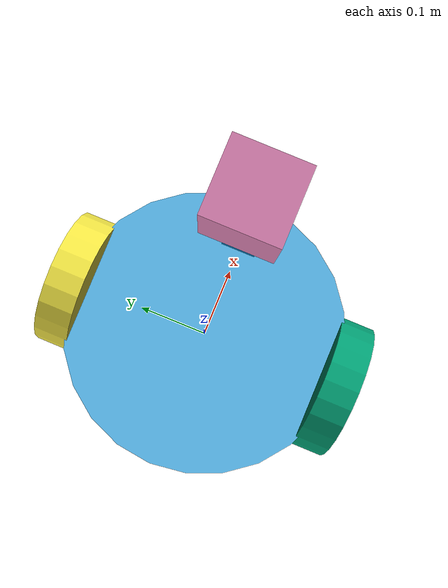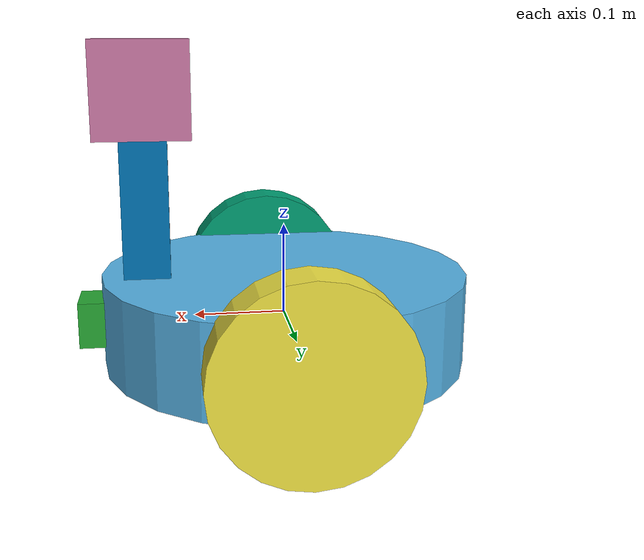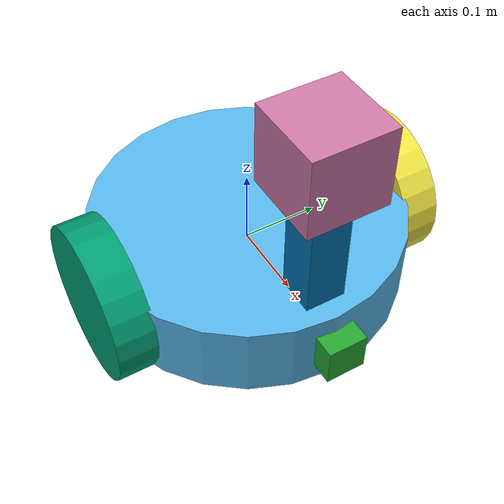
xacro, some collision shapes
<?xml version='1.0'?>

<robot name="udacity_bot" xmlns:xacro="http://www.ros.org/wiki/xacro">

  <xacro:include filename="$(find udacity_bot)/urdf/my_robot.gazebo" />

  <material name="red">
    <color rgba="1.0 0.0 0.0 1.0" />
  </material>

  <material name="green">
    <color rgba="0.0 1.0 0.0 1.0" />
  </material>

  <material name="blue">
    <color rgba="0.0 0.0 1.0 1.0" />
  </material>

  <link name="robot_footprint"></link>

  <joint name="robot_footprint_joint" type="fixed">
    <origin xyz="0 0 0" rpy="0 0 0" />
    <parent link="robot_footprint"/>
    <child link="chassis" />
  </joint>

  <joint name="right_wheel_hinge" type="continuous">
    <origin xyz="0 -0.2 0" rpy="0 0 0"/>
    <parent link="chassis"/>
    <child link="right_wheel"/>
    <axis xyz ="0 1 0" rpy="0 0 0"/>
    <limit effort="10000" velocity="1000"/>
    <dynamics damping="1.0" friction="1.0"/>
  </joint>

  <joint name="left_wheel_hinge" type="continuous">
    <origin xyz="0 0.2 0" rpy="0 0 0"/>
    <parent link="chassis"/>
    <child link="left_wheel"/>
    <axis xyz ="0 1 0" rpy="0 0 0"/>
    <limit effort="10000" velocity="1000"/>
    <dynamics damping="1.0" friction="1.0"/>
  </joint>

  <joint name="camera_joint" type="fixed">
    <origin xyz="0.2 0 0" rpy="0 0 0"/>
    <parent link="chassis"/>
    <child link="camera"/>
  </joint>

  <joint name="stem_joint" type="fixed">
    <origin xyz="0.15 0 0.1" rpy="0 0 0"/>
    <parent link="chassis"/>
    <child link="stem"/>
  </joint>

  <joint name="hokuyo_joint" type="fixed">
    <origin xyz="0 0 0.15" rpy="0 0 0"/>
    <parent link="stem"/>
    <child link="hokuyo"/>
  </joint>

  <link name='chassis'>
    <pose>0 0 0.1 0 0 0</pose>

    <inertial>
      <mass value="10.0"/>
      <origin xyz="0.0 0 0" rpy=" 0 0 0"/>
      <inertia
          ixx="0.1" ixy="0" ixz="0"
          iyy="0.1" iyz="0"
          izz="0.1"
          />
    </inertial>

    <collision name='collision'>
      <origin xyz="0 0 0" rpy=" 0 0 0"/>
      <geometry>
        <cylinder radius="0.2" length="0.1"/>
      </geometry>
    </collision>

    <visual name='chassis_visual'>
      <origin xyz="0 0 0" rpy=" 0 0 0"/>
      <geometry>
        <cylinder radius="0.2" length="0.1"/>
      </geometry>
    </visual>

    <collision name='back_caster_collision'>
      <origin xyz="-0.1 0 -0.05" rpy=" 0 0 0"/>
      <geometry>
        <sphere radius="0.0499"/>
      </geometry>
    </collision>

    <visual name='back_caster_visual'>
      <origin xyz="-0.1 0 -0.05" rpy=" 0 0 0"/>
      <geometry>
        <sphere radius="0.05"/>
      </geometry>
    </visual>

    <collision name='front_caster_collision'>
      <origin xyz="0.1 0 -0.05" rpy=" 0 0 0"/>
      <geometry>
        <sphere radius="0.0499"/>
      </geometry>
    </collision>

    <visual name='front_caster_visual'>
      <origin xyz="0.1 0 -0.05" rpy=" 0 0 0"/>
      <geometry>
        <sphere radius="0.05"/>
      </geometry>
    </visual>

  </link>

  <link name="right_wheel">

    <inertial>
      <mass value="5.0"/>
      <origin xyz="0 0 0" rpy=" 0 1.5707 1.5707"/>
      <inertia
            ixx="0.1" ixy="0" ixz="0"
            iyy="0.1" iyz="0"
            izz="0.1"
            />
    </inertial>

    <collision name="right_wheel_collision">
      <origin xyz="0 0 0" rpy=" 0 1.5707 1.5707"/>
      <geometry>
        <cylinder radius="0.1" length="0.05"/>
      </geometry>
    </collision>

    <visual name="right_wheel_visual">
      <origin xyz="0 0 0" rpy=" 0 1.5707 1.5707"/>
      <geometry>
        <cylinder radius="0.1" length="0.05"/>
      </geometry>
    </visual>

  </link>

  <link name="left_wheel">

    <inertial>
      <mass value="5.0"/>
      <origin xyz="0 0 0" rpy=" 0 1.5707 1.5707"/>
      <inertia
          ixx="0.1" ixy="0" ixz="0"
          iyy="0.1" iyz="0"
          izz="0.1"
          />
    </inertial>

    <collision name="left_wheel_collision">
      <origin xyz="0 0 0" rpy=" 0 1.5707 1.5707"/>
      <geometry>
        <cylinder radius="0.1" length="0.05"/>
      </geometry>
    </collision>

    <visual name="left_wheel_visual">
      <origin xyz="0 0 0" rpy=" 0 1.5707 1.5707"/>
      <geometry>
        <cylinder radius="0.1" length="0.05"/>
      </geometry>
    </visual>

  </link>

  <link name="stem">

    <inertial>
      <mass value="2.0"/>
      <origin xyz="0 0 0" rpy="0 0 0"/>
      <inertia
            ixx="0.1" ixy="0" ixz="0"
            iyy="0.1" iyz="0"
            izz="0.1"
            />
    </inertial>

    <collision name="stem_collision">
      <origin xyz="0 0 0" rpy="0 0 0"/>
      <geometry>
        <box size="0.05 0.05 0.15"/>
      </geometry>
    </collision>

    <visual name="stem_visual">
      <origin xyz="0 0 0" rpy=" 0 0 0"/>
      <geometry>
        <box size="0.05 0.05 0.25"/>
      </geometry>
    </visual>

  </link>

  <link name="camera">

    <inertial>
      <mass value="0.1"/>
      <origin xyz="0 0 0" rpy=" 0 0 0"/>
      <inertia
        ixx="1e-6" ixy="0" ixz="0"
        iyy="1e-6" iyz="0"
        izz="1e-6"
        />
    </inertial>

    <collision name="camera_collision">
      <origin xyz="0 0 0" rpy=" 0 0 0"/>
      <geometry>
        <box size="0.05 0.05 0.05"/>
      </geometry>
    </collision>

    <visual name="camera_visual">
      <origin xyz="0 0 0" rpy=" 0 0 0"/>
      <geometry>
        <box size="0.05 0.05 0.05"/>
      </geometry>
    </visual>

  </link>

  <link name="hokuyo">
    <inertial>
      <mass value="0.1"/>
      <origin xyz="0 0 0" rpy=" 0 0 0"/>
      <inertia
          ixx="1e-6" ixy="0" ixz="0"
          iyy="1e-6" iyz="0"
          izz="1e-6"
          />
      </inertial>

        <collision name="hokuyo_collision">
            <origin xyz="0 0 0" rpy=" 0 0 0"/>
            <geometry>
                <box size="0.1 0.1 0.1"/>
            </geometry>
        </collision>

        <visual name="hokuyo_visual">
            <origin xyz="0 0 0" rpy=" 0 0 0"/>
            <geometry>
                <mesh filename="package://udacity_bot/meshes/hokuyo.dae"/>
            </geometry>
        </visual>

    </link>
</robot>
